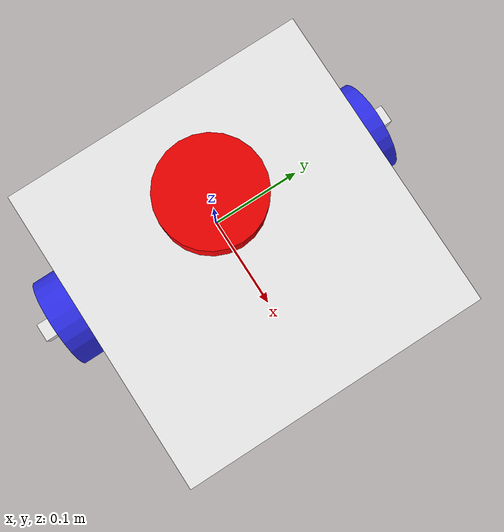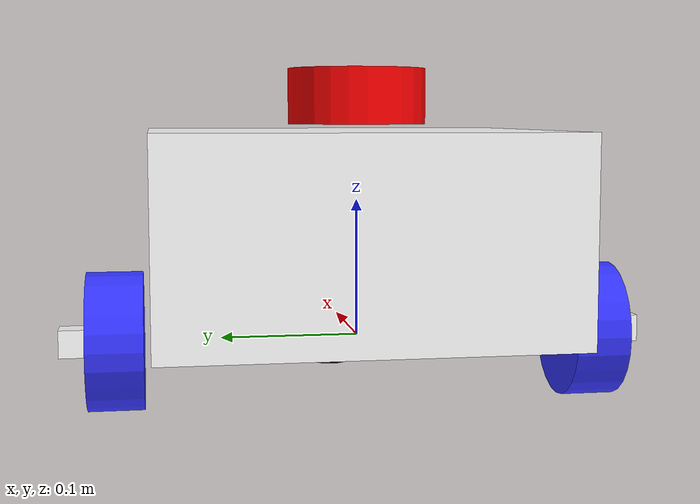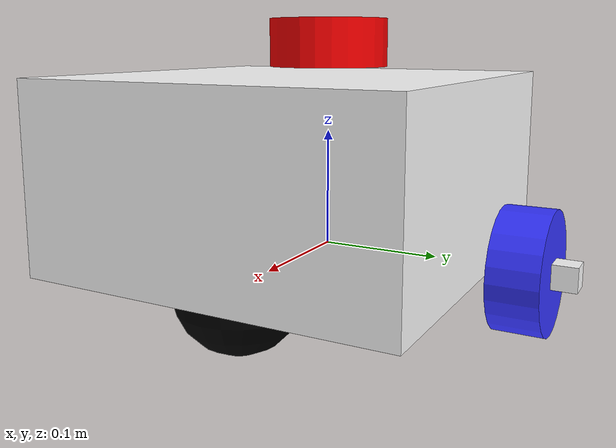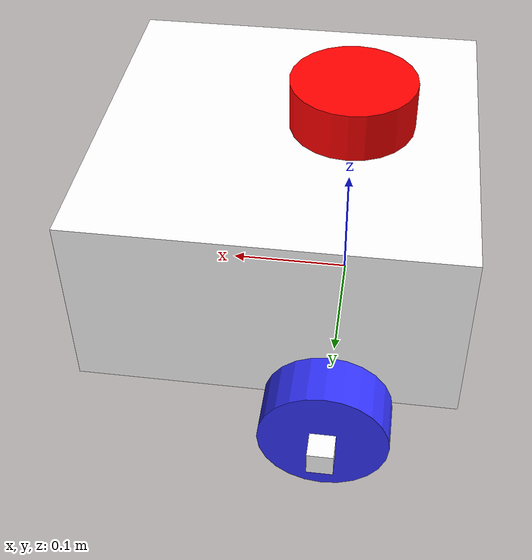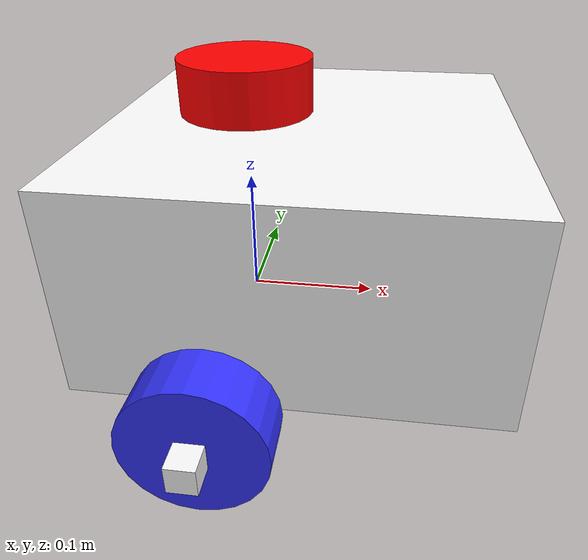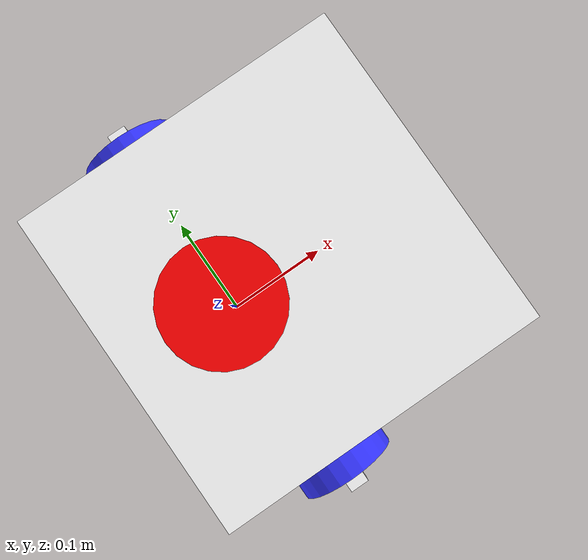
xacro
<?xml version="1.0"?>
<robot xmlns:xacro="http://www.ros.org/wiki/xacro"  name="nav_bot">

    <material name="white">
        <color rgba="1 1 1 1" />
    </material>
    <material name="blue">
        <color rgba="0.2 0.2 1 1"/>
    </material>
    <material name="black">
        <color rgba="0 0 0 1"/>
    </material>

    <link name="base_link">
    </link>

    <joint name="chassis_joint" type="fixed">
        <parent link="base_link"/>
        <child link="chassis"/>
        <origin xyz="-0.1 0 0"/>
    </joint>

    <link name="chassis">
        <visual>
            <origin xyz="0.15 0 0.075"/>
            <geometry>
                <box size="0.3 0.3 0.15"/>
            </geometry>
            <material name="white"/>
        </visual>
        <collision>
            <origin xyz="0.15 0 0.075"/>
            <geometry>
                <box size="0.3 0.3 0.15"/>
            </geometry>
        </collision>
        <inertial>
            <origin xyz="0.15 0 0.075" rpy="0 0 0"/>
            <mass value="0.5" />
            <inertia ixx="0.0046875" ixy="0.0" ixz="0.0" iyy="0.0046875" iyz="0.0" izz="0.0075" />
        </inertial>
    </link>

    <joint name="left_wheel_joint" type="continuous">
        <parent link="base_link"/>
        <child link="left_wheel"/>
        <origin xyz="0 0.175 0" rpy="-${pi/2} 0 0" />
        <axis xyz="0 0 1"/>
    </joint>

    <link name="left_wheel">
        <visual>
            <geometry>
                <cylinder radius="0.05" length="0.04"/>
            </geometry>
            <material name="blue"/>
        </visual>
        <visual>
            <origin xyz="0 0 0.03" rpy="0 0 0"/>
            <geometry>
                <box size="0.02 0.02 0.02"/>
            </geometry>
            <material name="white"/>
        </visual>
        <collision>
            <geometry>
                <cylinder radius="0.05" length="0.04"/>
            </geometry>
        </collision>
        <inertial>
            <origin xyz="0 0 0" rpy="0 0 0"/>
            <mass value="0.1" />
            <inertia ixx="0.000075833" ixy="0.0" ixz="0.0" iyy="0.000075833" iyz="0.0" izz="0.000125" />
        </inertial>
    </link>

    <joint name="right_wheel_joint" type="continuous">
        <parent link="base_link"/>
        <child link="right_wheel"/>
        <origin xyz="0 -0.175 0" rpy="${pi/2} 0 0" />
        <axis xyz="0 0 -1"/>
    </joint>

    <link name="right_wheel">
        <visual>
            <geometry>
                <cylinder radius="0.05" length="0.04"/>
            </geometry>
            <material name="blue"/>
        </visual>
        <visual>
            <origin xyz="0 0 0.03" rpy="0 0 0"/>
            <geometry>
                <box size="0.02 0.02 0.02"/>
            </geometry>
            <material name="white"/>
        </visual>
        <collision>
            <geometry>
                <cylinder radius="0.05" length="0.04"/>
            </geometry>
        </collision>
        <inertial>
            <origin xyz="0 0 0" rpy="0 0 0"/>
            <mass value="0.1" />
            <inertia ixx="0.000075833" ixy="0.0" ixz="0.0" iyy="0.000075833" iyz="0.0" izz="0.000125" />
        </inertial>
    </link>

    <joint name="caster_wheel_joint" type="fixed">
        <parent link="chassis"/>
        <child link="caster_wheel"/>
        <origin xyz="0.24 0 0"/>
    </joint>

    <link name="caster_wheel">
        <visual>
            <geometry>
                <sphere radius="0.05"/>
            </geometry>
            <material name="black"/>
        </visual>
        <collision>
            <geometry>
                <sphere radius="0.05"/>
            </geometry>
        </collision>
        <inertial>
            <origin xyz="0 0 0" rpy="0 0 0"/>
            <mass value="0.1" />
            <inertia ixx="0.0001" ixy="0.0" ixz="0.0" iyy="0.0001" iyz="0.0" izz="0.0001" />
        </inertial>
    </link>
	<xacro:include filename="lidar.xacro" />
	<xacro:include filename="gazebo_control.xacro" />
	<link name="base_footprint"/>
  <joint name="base_joint" type="fixed">
    <parent link="base_link"/>
    <child link="base_footprint"/>
    <origin xyz="0 0 0" rpy="0 0 0"/>
  </joint>
</robot>

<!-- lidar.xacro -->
<robot xmlns:xacro="http://www.ros.org/wiki/xacro" >

    <joint name="laser_joint" type="fixed">
        <parent link="chassis"/>
        <child link="laser_frame"/>
        <origin xyz="0.1 0 0.175" rpy="0 0 0"/>
    </joint>

    <link name="laser_frame">
        <visual>
            <geometry>
                <cylinder radius="0.05" length="0.04"/>
            </geometry>
            <material name="red">
                <color rgba="1 0 0 1"/>
            </material>
        </visual>
        <collision>
            <geometry>
                <cylinder radius="0.05" length="0.04"/>
            </geometry>
        </collision>
        <inertial>
            <origin xyz="0 0 0" rpy="0 0 0"/>
            <mass value="0.1" />
            <inertia ixx="0.0001" ixy="0.0" ixz="0.0" iyy="0.0001" iyz="0.0" izz="0.0001" />
        </inertial>
    </link>
    <gazebo reference="laser_frame">
        <sensor name="laser" type="gpu_lidar">
            <pose> 0 0 0 0 0 0 </pose>
            <visualize>true</visualize>
            <update_rate>10</update_rate>
            <ray>
                <scan>
                    <horizontal>
                        <samples>360</samples>
                        <min_angle>-3.14</min_angle>
                        <max_angle>3.14</max_angle>
                    </horizontal>
                </scan>
                <range>
                    <min>0.3</min>
                    <max>12</max>
                </range>
            </ray>
            <topic>scan</topic>
            <gz_frame_id>laser_frame</gz_frame_id>
        </sensor>
    </gazebo>
</robot>
